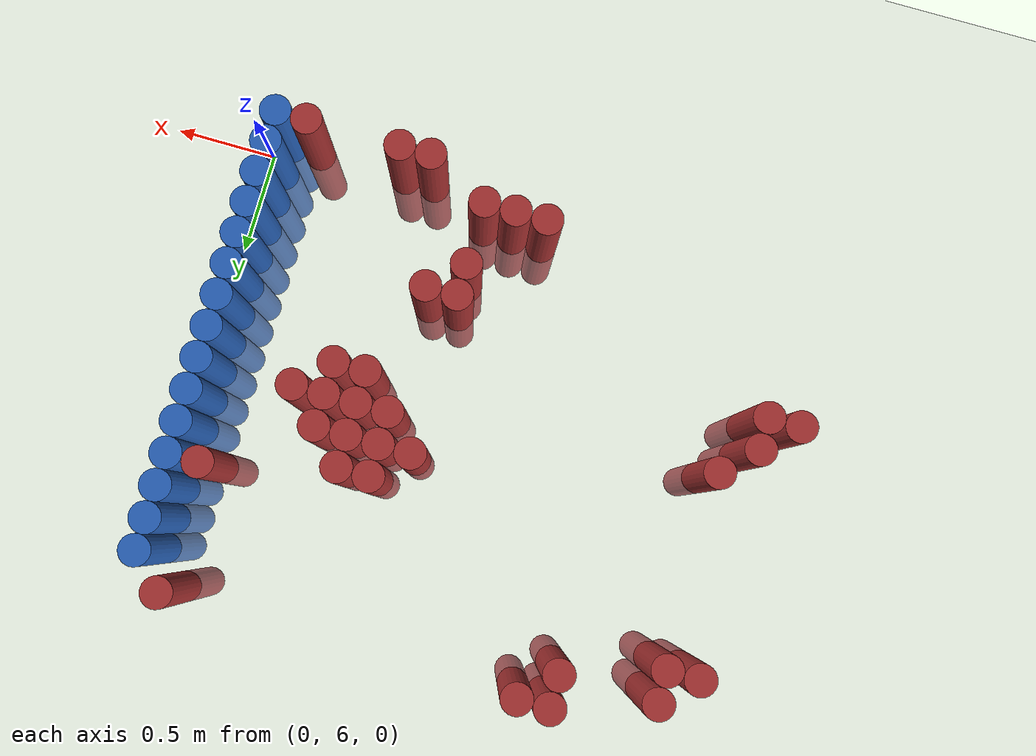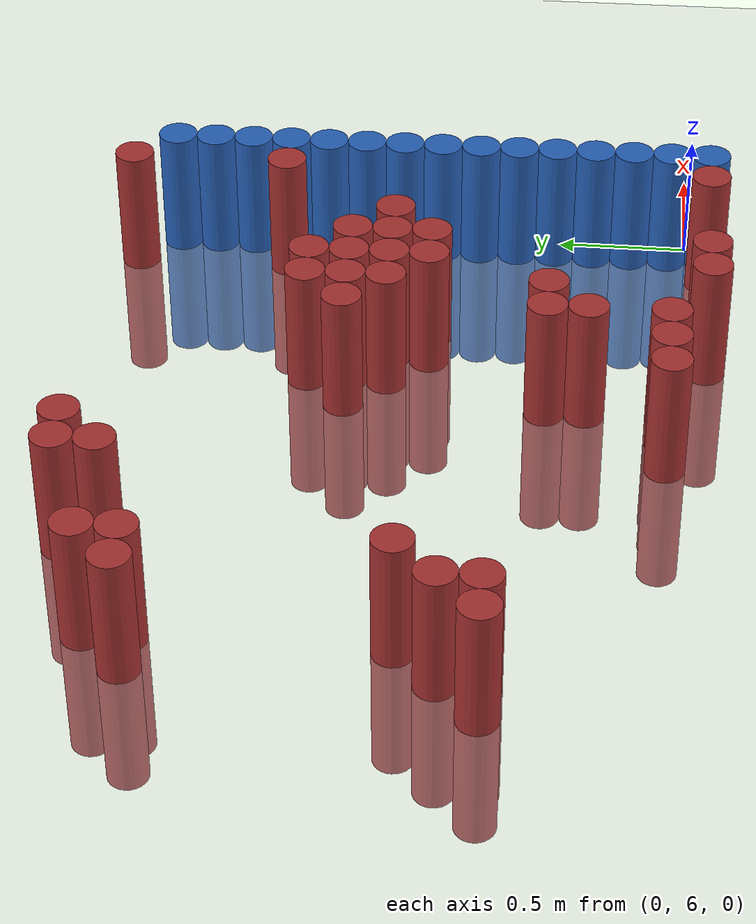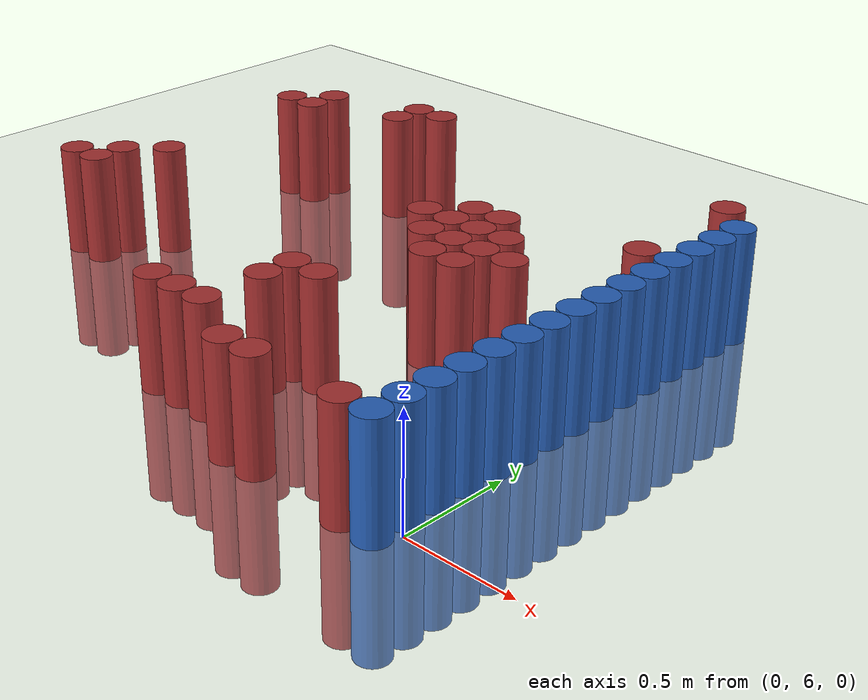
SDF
<sdf version="1.6">
 <world name="default">
  <model name="ground_plane">
   <static>1</static>
   <link name="link">
    <collision name="collision">
     <geometry><plane><normal>0 0 1</normal><size>100 100</size></plane></geometry>
     <surface><friction><ode><mu>100</mu><mu2>50</mu2></ode></friction></surface>
    </collision>
    <visual name="visual">
     <cast_shadows>0</cast_shadows>
     <geometry><plane><normal>0 0 1</normal><size>100 100</size></plane></geometry>
     <material>
      <script><uri>file://media/materials/scripts/gazebo.material</uri><name>Gazebo/Grey</name></script>
     </material>
    </visual>
   </link>
  </model>
  <model name="unit_cylinder_219">
   <static>1</static>
   <pose>-2.775000 6.675000 0.000000 0.000000 0.000000 0.000000</pose>
   <link name="link">
    <inertial>
     <mass>1</mass>
     <inertia><ixx>0.145833</ixx><ixy>0</ixy><ixz>0</ixz><iyy>0.145833</iyy><iyz>0</iyz><izz>0.125</izz></inertia>
    </inertial>
    <collision name="collision">
     <geometry><cylinder><radius>0.075000</radius><length>1</length></cylinder></geometry>
    </collision>
    <visual name="visual">
     <geometry><cylinder><radius>0.075000</radius><length>1</length></cylinder></geometry>
     <material>
      <ambient>0.648000 0.192000 0.192000 1</ambient>
      <diffuse>0.648000 0.192000 0.192000 1</diffuse>
     </material>
     <material>
      <script><name>Gazebo/Grey</name><uri>file://media/materials/scripts/gazebo.material</uri></script>
     </material>
    </visual>
   </link>
  </model>
  <model name="unit_cylinder_222">
   <static>1</static>
   <pose>-2.625000 6.675000 0.000000 0.000000 0.000000 0.000000</pose>
   <link name="link">
    <inertial>
     <mass>1</mass>
     <inertia><ixx>0.145833</ixx><ixy>0</ixy><ixz>0</ixz><iyy>0.145833</iyy><iyz>0</iyz><izz>0.125</izz></inertia>
    </inertial>
    <collision name="collision">
     <geometry><cylinder><radius>0.075000</radius><length>1</length></cylinder></geometry>
    </collision>
    <visual name="visual">
     <geometry><cylinder><radius>0.075000</radius><length>1</length></cylinder></geometry>
     <material>
      <ambient>0.648000 0.192000 0.192000 1</ambient>
      <diffuse>0.648000 0.192000 0.192000 1</diffuse>
     </material>
     <material>
      <script><name>Gazebo/Grey</name><uri>file://media/materials/scripts/gazebo.material</uri></script>
     </material>
    </visual>
   </link>
  </model>
  <model name="unit_cylinder_223">
   <static>1</static>
   <pose>-2.625000 6.825000 0.000000 0.000000 0.000000 0.000000</pose>
   <link name="link">
    <inertial>
     <mass>1</mass>
     <inertia><ixx>0.145833</ixx><ixy>0</ixy><ixz>0</ixz><iyy>0.145833</iyy><iyz>0</iyz><izz>0.125</izz></inertia>
    </inertial>
    <collision name="collision">
     <geometry><cylinder><radius>0.075000</radius><length>1</length></cylinder></geometry>
    </collision>
    <visual name="visual">
     <geometry><cylinder><radius>0.075000</radius><length>1</length></cylinder></geometry>
     <material>
      <ambient>0.648000 0.192000 0.192000 1</ambient>
      <diffuse>0.648000 0.192000 0.192000 1</diffuse>
     </material>
     <material>
      <script><name>Gazebo/Grey</name><uri>file://media/materials/scripts/gazebo.material</uri></script>
     </material>
    </visual>
   </link>
  </model>
  <model name="unit_cylinder_224">
   <static>1</static>
   <pose>-2.625000 7.875000 0.000000 0.000000 0.000000 0.000000</pose>
   <link name="link">
    <inertial>
     <mass>1</mass>
     <inertia><ixx>0.145833</ixx><ixy>0</ixy><ixz>0</ixz><iyy>0.145833</iyy><iyz>0</iyz><izz>0.125</izz></inertia>
    </inertial>
    <collision name="collision">
     <geometry><cylinder><radius>0.075000</radius><length>1</length></cylinder></geometry>
    </collision>
    <visual name="visual">
     <geometry><cylinder><radius>0.075000</radius><length>1</length></cylinder></geometry>
     <material>
      <ambient>0.648000 0.192000 0.192000 1</ambient>
      <diffuse>0.648000 0.192000 0.192000 1</diffuse>
     </material>
     <material>
      <script><name>Gazebo/Grey</name><uri>file://media/materials/scripts/gazebo.material</uri></script>
     </material>
    </visual>
   </link>
  </model>
  <model name="unit_cylinder_226">
   <static>1</static>
   <pose>-2.475000 6.975000 0.000000 0.000000 0.000000 0.000000</pose>
   <link name="link">
    <inertial>
     <mass>1</mass>
     <inertia><ixx>0.145833</ixx><ixy>0</ixy><ixz>0</ixz><iyy>0.145833</iyy><iyz>0</iyz><izz>0.125</izz></inertia>
    </inertial>
    <collision name="collision">
     <geometry><cylinder><radius>0.075000</radius><length>1</length></cylinder></geometry>
    </collision>
    <visual name="visual">
     <geometry><cylinder><radius>0.075000</radius><length>1</length></cylinder></geometry>
     <material>
      <ambient>0.648000 0.192000 0.192000 1</ambient>
      <diffuse>0.648000 0.192000 0.192000 1</diffuse>
     </material>
     <material>
      <script><name>Gazebo/Grey</name><uri>file://media/materials/scripts/gazebo.material</uri></script>
     </material>
    </visual>
   </link>
  </model>
  <model name="unit_cylinder_227">
   <static>1</static>
   <pose>-2.475000 7.875000 0.000000 0.000000 0.000000 0.000000</pose>
   <link name="link">
    <inertial>
     <mass>1</mass>
     <inertia><ixx>0.145833</ixx><ixy>0</ixy><ixz>0</ixz><iyy>0.145833</iyy><iyz>0</iyz><izz>0.125</izz></inertia>
    </inertial>
    <collision name="collision">
     <geometry><cylinder><radius>0.075000</radius><length>1</length></cylinder></geometry>
    </collision>
    <visual name="visual">
     <geometry><cylinder><radius>0.075000</radius><length>1</length></cylinder></geometry>
     <material>
      <ambient>0.648000 0.192000 0.192000 1</ambient>
      <diffuse>0.648000 0.192000 0.192000 1</diffuse>
     </material>
     <material>
      <script><name>Gazebo/Grey</name><uri>file://media/materials/scripts/gazebo.material</uri></script>
     </material>
    </visual>
   </link>
  </model>
  <model name="unit_cylinder_228">
   <static>1</static>
   <pose>-2.475000 8.025000 0.000000 0.000000 0.000000 0.000000</pose>
   <link name="link">
    <inertial>
     <mass>1</mass>
     <inertia><ixx>0.145833</ixx><ixy>0</ixy><ixz>0</ixz><iyy>0.145833</iyy><iyz>0</iyz><izz>0.125</izz></inertia>
    </inertial>
    <collision name="collision">
     <geometry><cylinder><radius>0.075000</radius><length>1</length></cylinder></geometry>
    </collision>
    <visual name="visual">
     <geometry><cylinder><radius>0.075000</radius><length>1</length></cylinder></geometry>
     <material>
      <ambient>0.648000 0.192000 0.192000 1</ambient>
      <diffuse>0.648000 0.192000 0.192000 1</diffuse>
     </material>
     <material>
      <script><name>Gazebo/Grey</name><uri>file://media/materials/scripts/gazebo.material</uri></script>
     </material>
    </visual>
   </link>
  </model>
  <model name="unit_cylinder_236">
   <static>1</static>
   <pose>-2.025000 8.025000 0.000000 0.000000 0.000000 0.000000</pose>
   <link name="link">
    <inertial>
     <mass>1</mass>
     <inertia><ixx>0.145833</ixx><ixy>0</ixy><ixz>0</ixz><iyy>0.145833</iyy><iyz>0</iyz><izz>0.125</izz></inertia>
    </inertial>
    <collision name="collision">
     <geometry><cylinder><radius>0.075000</radius><length>1</length></cylinder></geometry>
    </collision>
    <visual name="visual">
     <geometry><cylinder><radius>0.075000</radius><length>1</length></cylinder></geometry>
     <material>
      <ambient>0.648000 0.192000 0.192000 1</ambient>
      <diffuse>0.648000 0.192000 0.192000 1</diffuse>
     </material>
     <material>
      <script><name>Gazebo/Grey</name><uri>file://media/materials/scripts/gazebo.material</uri></script>
     </material>
    </visual>
   </link>
  </model>
  <model name="unit_cylinder_237">
   <static>1</static>
   <pose>-2.025000 8.175000 0.000000 0.000000 0.000000 0.000000</pose>
   <link name="link">
    <inertial>
     <mass>1</mass>
     <inertia><ixx>0.145833</ixx><ixy>0</ixy><ixz>0</ixz><iyy>0.145833</iyy><iyz>0</iyz><izz>0.125</izz></inertia>
    </inertial>
    <collision name="collision">
     <geometry><cylinder><radius>0.075000</radius><length>1</length></cylinder></geometry>
    </collision>
    <visual name="visual">
     <geometry><cylinder><radius>0.075000</radius><length>1</length></cylinder></geometry>
     <material>
      <ambient>0.648000 0.192000 0.192000 1</ambient>
      <diffuse>0.648000 0.192000 0.192000 1</diffuse>
     </material>
     <material>
      <script><name>Gazebo/Grey</name><uri>file://media/materials/scripts/gazebo.material</uri></script>
     </material>
    </visual>
   </link>
  </model>
  <model name="unit_cylinder_238">
   <static>1</static>
   <pose>-1.875000 8.175000 0.000000 0.000000 0.000000 0.000000</pose>
   <link name="link">
    <inertial>
     <mass>1</mass>
     <inertia><ixx>0.145833</ixx><ixy>0</ixy><ixz>0</ixz><iyy>0.145833</iyy><iyz>0</iyz><izz>0.125</izz></inertia>
    </inertial>
    <collision name="collision">
     <geometry><cylinder><radius>0.075000</radius><length>1</length></cylinder></geometry>
    </collision>
    <visual name="visual">
     <geometry><cylinder><radius>0.075000</radius><length>1</length></cylinder></geometry>
     <material>
      <ambient>0.648000 0.192000 0.192000 1</ambient>
      <diffuse>0.648000 0.192000 0.192000 1</diffuse>
     </material>
     <material>
      <script><name>Gazebo/Grey</name><uri>file://media/materials/scripts/gazebo.material</uri></script>
     </material>
    </visual>
   </link>
  </model>
  <model name="unit_cylinder_242">
   <static>1</static>
   <pose>-1.425000 6.075000 0.000000 0.000000 0.000000 0.000000</pose>
   <link name="link">
    <inertial>
     <mass>1</mass>
     <inertia><ixx>0.145833</ixx><ixy>0</ixy><ixz>0</ixz><iyy>0.145833</iyy><iyz>0</iyz><izz>0.125</izz></inertia>
    </inertial>
    <collision name="collision">
     <geometry><cylinder><radius>0.075000</radius><length>1</length></cylinder></geometry>
    </collision>
    <visual name="visual">
     <geometry><cylinder><radius>0.075000</radius><length>1</length></cylinder></geometry>
     <material>
      <ambient>0.648000 0.192000 0.192000 1</ambient>
      <diffuse>0.648000 0.192000 0.192000 1</diffuse>
     </material>
     <material>
      <script><name>Gazebo/Grey</name><uri>file://media/materials/scripts/gazebo.material</uri></script>
     </material>
    </visual>
   </link>
  </model>
  <model name="unit_cylinder_244">
   <static>1</static>
   <pose>-1.275000 6.075000 0.000000 0.000000 0.000000 0.000000</pose>
   <link name="link">
    <inertial>
     <mass>1</mass>
     <inertia><ixx>0.145833</ixx><ixy>0</ixy><ixz>0</ixz><iyy>0.145833</iyy><iyz>0</iyz><izz>0.125</izz></inertia>
    </inertial>
    <collision name="collision">
     <geometry><cylinder><radius>0.075000</radius><length>1</length></cylinder></geometry>
    </collision>
    <visual name="visual">
     <geometry><cylinder><radius>0.075000</radius><length>1</length></cylinder></geometry>
     <material>
      <ambient>0.648000 0.192000 0.192000 1</ambient>
      <diffuse>0.648000 0.192000 0.192000 1</diffuse>
     </material>
     <material>
      <script><name>Gazebo/Grey</name><uri>file://media/materials/scripts/gazebo.material</uri></script>
     </material>
    </visual>
   </link>
  </model>
  <model name="unit_cylinder_245">
   <static>1</static>
   <pose>-1.125000 6.075000 0.000000 0.000000 0.000000 0.000000</pose>
   <link name="link">
    <inertial>
     <mass>1</mass>
     <inertia><ixx>0.145833</ixx><ixy>0</ixy><ixz>0</ixz><iyy>0.145833</iyy><iyz>0</iyz><izz>0.125</izz></inertia>
    </inertial>
    <collision name="collision">
     <geometry><cylinder><radius>0.075000</radius><length>1</length></cylinder></geometry>
    </collision>
    <visual name="visual">
     <geometry><cylinder><radius>0.075000</radius><length>1</length></cylinder></geometry>
     <material>
      <ambient>0.648000 0.192000 0.192000 1</ambient>
      <diffuse>0.648000 0.192000 0.192000 1</diffuse>
     </material>
     <material>
      <script><name>Gazebo/Grey</name><uri>file://media/materials/scripts/gazebo.material</uri></script>
     </material>
    </visual>
   </link>
  </model>
  <model name="unit_cylinder_246">
   <static>1</static>
   <pose>-1.125000 6.375000 0.000000 0.000000 0.000000 0.000000</pose>
   <link name="link">
    <inertial>
     <mass>1</mass>
     <inertia><ixx>0.145833</ixx><ixy>0</ixy><ixz>0</ixz><iyy>0.145833</iyy><iyz>0</iyz><izz>0.125</izz></inertia>
    </inertial>
    <collision name="collision">
     <geometry><cylinder><radius>0.075000</radius><length>1</length></cylinder></geometry>
    </collision>
    <visual name="visual">
     <geometry><cylinder><radius>0.075000</radius><length>1</length></cylinder></geometry>
     <material>
      <ambient>0.648000 0.192000 0.192000 1</ambient>
      <diffuse>0.648000 0.192000 0.192000 1</diffuse>
     </material>
     <material>
      <script><name>Gazebo/Grey</name><uri>file://media/materials/scripts/gazebo.material</uri></script>
     </material>
    </visual>
   </link>
  </model>
  <model name="unit_cylinder_247">
   <static>1</static>
   <pose>-1.125000 6.525000 0.000000 0.000000 0.000000 0.000000</pose>
   <link name="link">
    <inertial>
     <mass>1</mass>
     <inertia><ixx>0.145833</ixx><ixy>0</ixy><ixz>0</ixz><iyy>0.145833</iyy><iyz>0</iyz><izz>0.125</izz></inertia>
    </inertial>
    <collision name="collision">
     <geometry><cylinder><radius>0.075000</radius><length>1</length></cylinder></geometry>
    </collision>
    <visual name="visual">
     <geometry><cylinder><radius>0.075000</radius><length>1</length></cylinder></geometry>
     <material>
      <ambient>0.648000 0.192000 0.192000 1</ambient>
      <diffuse>0.648000 0.192000 0.192000 1</diffuse>
     </material>
     <material>
      <script><name>Gazebo/Grey</name><uri>file://media/materials/scripts/gazebo.material</uri></script>
     </material>
    </visual>
   </link>
  </model>
  <model name="unit_cylinder_248">
   <static>1</static>
   <pose>-1.125000 7.275000 0.000000 0.000000 0.000000 0.000000</pose>
   <link name="link">
    <inertial>
     <mass>1</mass>
     <inertia><ixx>0.145833</ixx><ixy>0</ixy><ixz>0</ixz><iyy>0.145833</iyy><iyz>0</iyz><izz>0.125</izz></inertia>
    </inertial>
    <collision name="collision">
     <geometry><cylinder><radius>0.075000</radius><length>1</length></cylinder></geometry>
    </collision>
    <visual name="visual">
     <geometry><cylinder><radius>0.075000</radius><length>1</length></cylinder></geometry>
     <material>
      <ambient>0.648000 0.192000 0.192000 1</ambient>
      <diffuse>0.648000 0.192000 0.192000 1</diffuse>
     </material>
     <material>
      <script><name>Gazebo/Grey</name><uri>file://media/materials/scripts/gazebo.material</uri></script>
     </material>
    </visual>
   </link>
  </model>
  <model name="unit_cylinder_250">
   <static>1</static>
   <pose>-0.975000 6.525000 0.000000 0.000000 0.000000 0.000000</pose>
   <link name="link">
    <inertial>
     <mass>1</mass>
     <inertia><ixx>0.145833</ixx><ixy>0</ixy><ixz>0</ixz><iyy>0.145833</iyy><iyz>0</iyz><izz>0.125</izz></inertia>
    </inertial>
    <collision name="collision">
     <geometry><cylinder><radius>0.075000</radius><length>1</length></cylinder></geometry>
    </collision>
    <visual name="visual">
     <geometry><cylinder><radius>0.075000</radius><length>1</length></cylinder></geometry>
     <material>
      <ambient>0.648000 0.192000 0.192000 1</ambient>
      <diffuse>0.648000 0.192000 0.192000 1</diffuse>
     </material>
     <material>
      <script><name>Gazebo/Grey</name><uri>file://media/materials/scripts/gazebo.material</uri></script>
     </material>
    </visual>
   </link>
  </model>
  <model name="unit_cylinder_251">
   <static>1</static>
   <pose>-0.975000 7.125000 0.000000 0.000000 0.000000 0.000000</pose>
   <link name="link">
    <inertial>
     <mass>1</mass>
     <inertia><ixx>0.145833</ixx><ixy>0</ixy><ixz>0</ixz><iyy>0.145833</iyy><iyz>0</iyz><izz>0.125</izz></inertia>
    </inertial>
    <collision name="collision">
     <geometry><cylinder><radius>0.075000</radius><length>1</length></cylinder></geometry>
    </collision>
    <visual name="visual">
     <geometry><cylinder><radius>0.075000</radius><length>1</length></cylinder></geometry>
     <material>
      <ambient>0.648000 0.192000 0.192000 1</ambient>
      <diffuse>0.648000 0.192000 0.192000 1</diffuse>
     </material>
     <material>
      <script><name>Gazebo/Grey</name><uri>file://media/materials/scripts/gazebo.material</uri></script>
     </material>
    </visual>
   </link>
  </model>
  <model name="unit_cylinder_252">
   <static>1</static>
   <pose>-0.975000 7.275000 0.000000 0.000000 0.000000 0.000000</pose>
   <link name="link">
    <inertial>
     <mass>1</mass>
     <inertia><ixx>0.145833</ixx><ixy>0</ixy><ixz>0</ixz><iyy>0.145833</iyy><iyz>0</iyz><izz>0.125</izz></inertia>
    </inertial>
    <collision name="collision">
     <geometry><cylinder><radius>0.075000</radius><length>1</length></cylinder></geometry>
    </collision>
    <visual name="visual">
     <geometry><cylinder><radius>0.075000</radius><length>1</length></cylinder></geometry>
     <material>
      <ambient>0.648000 0.192000 0.192000 1</ambient>
      <diffuse>0.648000 0.192000 0.192000 1</diffuse>
     </material>
     <material>
      <script><name>Gazebo/Grey</name><uri>file://media/materials/scripts/gazebo.material</uri></script>
     </material>
    </visual>
   </link>
  </model>
  <model name="unit_cylinder_253">
   <static>1</static>
   <pose>-0.975000 7.425000 0.000000 0.000000 0.000000 0.000000</pose>
   <link name="link">
    <inertial>
     <mass>1</mass>
     <inertia><ixx>0.145833</ixx><ixy>0</ixy><ixz>0</ixz><iyy>0.145833</iyy><iyz>0</iyz><izz>0.125</izz></inertia>
    </inertial>
    <collision name="collision">
     <geometry><cylinder><radius>0.075000</radius><length>1</length></cylinder></geometry>
    </collision>
    <visual name="visual">
     <geometry><cylinder><radius>0.075000</radius><length>1</length></cylinder></geometry>
     <material>
      <ambient>0.648000 0.192000 0.192000 1</ambient>
      <diffuse>0.648000 0.192000 0.192000 1</diffuse>
     </material>
     <material>
      <script><name>Gazebo/Grey</name><uri>file://media/materials/scripts/gazebo.material</uri></script>
     </material>
    </visual>
   </link>
  </model>
  <model name="unit_cylinder_257">
   <static>1</static>
   <pose>-0.825000 5.925000 0.000000 0.000000 0.000000 0.000000</pose>
   <link name="link">
    <inertial>
     <mass>1</mass>
     <inertia><ixx>0.145833</ixx><ixy>0</ixy><ixz>0</ixz><iyy>0.145833</iyy><iyz>0</iyz><izz>0.125</izz></inertia>
    </inertial>
    <collision name="collision">
     <geometry><cylinder><radius>0.075000</radius><length>1</length></cylinder></geometry>
    </collision>
    <visual name="visual">
     <geometry><cylinder><radius>0.075000</radius><length>1</length></cylinder></geometry>
     <material>
      <ambient>0.648000 0.192000 0.192000 1</ambient>
      <diffuse>0.648000 0.192000 0.192000 1</diffuse>
     </material>
     <material>
      <script><name>Gazebo/Grey</name><uri>file://media/materials/scripts/gazebo.material</uri></script>
     </material>
    </visual>
   </link>
  </model>
  <model name="unit_cylinder_258">
   <static>1</static>
   <pose>-0.825000 6.975000 0.000000 0.000000 0.000000 0.000000</pose>
   <link name="link">
    <inertial>
     <mass>1</mass>
     <inertia><ixx>0.145833</ixx><ixy>0</ixy><ixz>0</ixz><iyy>0.145833</iyy><iyz>0</iyz><izz>0.125</izz></inertia>
    </inertial>
    <collision name="collision">
     <geometry><cylinder><radius>0.075000</radius><length>1</length></cylinder></geometry>
    </collision>
    <visual name="visual">
     <geometry><cylinder><radius>0.075000</radius><length>1</length></cylinder></geometry>
     <material>
      <ambient>0.648000 0.192000 0.192000 1</ambient>
      <diffuse>0.648000 0.192000 0.192000 1</diffuse>
     </material>
     <material>
      <script><name>Gazebo/Grey</name><uri>file://media/materials/scripts/gazebo.material</uri></script>
     </material>
    </visual>
   </link>
  </model>
  <model name="unit_cylinder_259">
   <static>1</static>
   <pose>-0.825000 7.125000 0.000000 0.000000 0.000000 0.000000</pose>
   <link name="link">
    <inertial>
     <mass>1</mass>
     <inertia><ixx>0.145833</ixx><ixy>0</ixy><ixz>0</ixz><iyy>0.145833</iyy><iyz>0</iyz><izz>0.125</izz></inertia>
    </inertial>
    <collision name="collision">
     <geometry><cylinder><radius>0.075000</radius><length>1</length></cylinder></geometry>
    </collision>
    <visual name="visual">
     <geometry><cylinder><radius>0.075000</radius><length>1</length></cylinder></geometry>
     <material>
      <ambient>0.648000 0.192000 0.192000 1</ambient>
      <diffuse>0.648000 0.192000 0.192000 1</diffuse>
     </material>
     <material>
      <script><name>Gazebo/Grey</name><uri>file://media/materials/scripts/gazebo.material</uri></script>
     </material>
    </visual>
   </link>
  </model>
  <model name="unit_cylinder_260">
   <static>1</static>
   <pose>-0.825000 7.275000 0.000000 0.000000 0.000000 0.000000</pose>
   <link name="link">
    <inertial>
     <mass>1</mass>
     <inertia><ixx>0.145833</ixx><ixy>0</ixy><ixz>0</ixz><iyy>0.145833</iyy><iyz>0</iyz><izz>0.125</izz></inertia>
    </inertial>
    <collision name="collision">
     <geometry><cylinder><radius>0.075000</radius><length>1</length></cylinder></geometry>
    </collision>
    <visual name="visual">
     <geometry><cylinder><radius>0.075000</radius><length>1</length></cylinder></geometry>
     <material>
      <ambient>0.648000 0.192000 0.192000 1</ambient>
      <diffuse>0.648000 0.192000 0.192000 1</diffuse>
     </material>
     <material>
      <script><name>Gazebo/Grey</name><uri>file://media/materials/scripts/gazebo.material</uri></script>
     </material>
    </visual>
   </link>
  </model>
  <model name="unit_cylinder_261">
   <static>1</static>
   <pose>-0.825000 7.425000 0.000000 0.000000 0.000000 0.000000</pose>
   <link name="link">
    <inertial>
     <mass>1</mass>
     <inertia><ixx>0.145833</ixx><ixy>0</ixy><ixz>0</ixz><iyy>0.145833</iyy><iyz>0</iyz><izz>0.125</izz></inertia>
    </inertial>
    <collision name="collision">
     <geometry><cylinder><radius>0.075000</radius><length>1</length></cylinder></geometry>
    </collision>
    <visual name="visual">
     <geometry><cylinder><radius>0.075000</radius><length>1</length></cylinder></geometry>
     <material>
      <ambient>0.648000 0.192000 0.192000 1</ambient>
      <diffuse>0.648000 0.192000 0.192000 1</diffuse>
     </material>
     <material>
      <script><name>Gazebo/Grey</name><uri>file://media/materials/scripts/gazebo.material</uri></script>
     </material>
    </visual>
   </link>
  </model>
  <model name="unit_cylinder_267">
   <static>1</static>
   <pose>-0.675000 5.925000 0.000000 0.000000 0.000000 0.000000</pose>
   <link name="link">
    <inertial>
     <mass>1</mass>
     <inertia><ixx>0.145833</ixx><ixy>0</ixy><ixz>0</ixz><iyy>0.145833</iyy><iyz>0</iyz><izz>0.125</izz></inertia>
    </inertial>
    <collision name="collision">
     <geometry><cylinder><radius>0.075000</radius><length>1</length></cylinder></geometry>
    </collision>
    <visual name="visual">
     <geometry><cylinder><radius>0.075000</radius><length>1</length></cylinder></geometry>
     <material>
      <ambient>0.648000 0.192000 0.192000 1</ambient>
      <diffuse>0.648000 0.192000 0.192000 1</diffuse>
     </material>
     <material>
      <script><name>Gazebo/Grey</name><uri>file://media/materials/scripts/gazebo.material</uri></script>
     </material>
    </visual>
   </link>
  </model>
  <model name="unit_cylinder_268">
   <static>1</static>
   <pose>-0.675000 6.975000 0.000000 0.000000 0.000000 0.000000</pose>
   <link name="link">
    <inertial>
     <mass>1</mass>
     <inertia><ixx>0.145833</ixx><ixy>0</ixy><ixz>0</ixz><iyy>0.145833</iyy><iyz>0</iyz><izz>0.125</izz></inertia>
    </inertial>
    <collision name="collision">
     <geometry><cylinder><radius>0.075000</radius><length>1</length></cylinder></geometry>
    </collision>
    <visual name="visual">
     <geometry><cylinder><radius>0.075000</radius><length>1</length></cylinder></geometry>
     <material>
      <ambient>0.648000 0.192000 0.192000 1</ambient>
      <diffuse>0.648000 0.192000 0.192000 1</diffuse>
     </material>
     <material>
      <script><name>Gazebo/Grey</name><uri>file://media/materials/scripts/gazebo.material</uri></script>
     </material>
    </visual>
   </link>
  </model>
  <model name="unit_cylinder_269">
   <static>1</static>
   <pose>-0.675000 7.125000 0.000000 0.000000 0.000000 0.000000</pose>
   <link name="link">
    <inertial>
     <mass>1</mass>
     <inertia><ixx>0.145833</ixx><ixy>0</ixy><ixz>0</ixz><iyy>0.145833</iyy><iyz>0</iyz><izz>0.125</izz></inertia>
    </inertial>
    <collision name="collision">
     <geometry><cylinder><radius>0.075000</radius><length>1</length></cylinder></geometry>
    </collision>
    <visual name="visual">
     <geometry><cylinder><radius>0.075000</radius><length>1</length></cylinder></geometry>
     <material>
      <ambient>0.648000 0.192000 0.192000 1</ambient>
      <diffuse>0.648000 0.192000 0.192000 1</diffuse>
     </material>
     <material>
      <script><name>Gazebo/Grey</name><uri>file://media/materials/scripts/gazebo.material</uri></script>
     </material>
    </visual>
   </link>
  </model>
  <model name="unit_cylinder_270">
   <static>1</static>
   <pose>-0.675000 7.275000 0.000000 0.000000 0.000000 0.000000</pose>
   <link name="link">
    <inertial>
     <mass>1</mass>
     <inertia><ixx>0.145833</ixx><ixy>0</ixy><ixz>0</ixz><iyy>0.145833</iyy><iyz>0</iyz><izz>0.125</izz></inertia>
    </inertial>
    <collision name="collision">
     <geometry><cylinder><radius>0.075000</radius><length>1</length></cylinder></geometry>
    </collision>
    <visual name="visual">
     <geometry><cylinder><radius>0.075000</radius><length>1</length></cylinder></geometry>
     <material>
      <ambient>0.648000 0.192000 0.192000 1</ambient>
      <diffuse>0.648000 0.192000 0.192000 1</diffuse>
     </material>
     <material>
      <script><name>Gazebo/Grey</name><uri>file://media/materials/scripts/gazebo.material</uri></script>
     </material>
    </visual>
   </link>
  </model>
  <model name="unit_cylinder_277">
   <static>1</static>
   <pose>-0.525000 7.125000 0.000000 0.000000 0.000000 0.000000</pose>
   <link name="link">
    <inertial>
     <mass>1</mass>
     <inertia><ixx>0.145833</ixx><ixy>0</ixy><ixz>0</ixz><iyy>0.145833</iyy><iyz>0</iyz><izz>0.125</izz></inertia>
    </inertial>
    <collision name="collision">
     <geometry><cylinder><radius>0.075000</radius><length>1</length></cylinder></geometry>
    </collision>
    <visual name="visual">
     <geometry><cylinder><radius>0.075000</radius><length>1</length></cylinder></geometry>
     <material>
      <ambient>0.648000 0.192000 0.192000 1</ambient>
      <diffuse>0.648000 0.192000 0.192000 1</diffuse>
     </material>
     <material>
      <script><name>Gazebo/Grey</name><uri>file://media/materials/scripts/gazebo.material</uri></script>
     </material>
    </visual>
   </link>
  </model>
  <model name="unit_cylinder_294">
   <static>1</static>
   <pose>-0.225000 5.925000 0.000000 0.000000 0.000000 0.000000</pose>
   <link name="link">
    <inertial>
     <mass>1</mass>
     <inertia><ixx>0.145833</ixx><ixy>0</ixy><ixz>0</ixz><iyy>0.145833</iyy><iyz>0</iyz><izz>0.125</izz></inertia>
    </inertial>
    <collision name="collision">
     <geometry><cylinder><radius>0.075000</radius><length>1</length></cylinder></geometry>
    </collision>
    <visual name="visual">
     <geometry><cylinder><radius>0.075000</radius><length>1</length></cylinder></geometry>
     <material>
      <ambient>0.648000 0.192000 0.192000 1</ambient>
      <diffuse>0.648000 0.192000 0.192000 1</diffuse>
     </material>
     <material>
      <script><name>Gazebo/Grey</name><uri>file://media/materials/scripts/gazebo.material</uri></script>
     </material>
    </visual>
   </link>
  </model>
  <model name="unit_cylinder_295">
   <static>1</static>
   <pose>-0.225000 7.575000 0.000000 0.000000 0.000000 0.000000</pose>
   <link name="link">
    <inertial>
     <mass>1</mass>
     <inertia><ixx>0.145833</ixx><ixy>0</ixy><ixz>0</ixz><iyy>0.145833</iyy><iyz>0</iyz><izz>0.125</izz></inertia>
    </inertial>
    <collision name="collision">
     <geometry><cylinder><radius>0.075000</radius><length>1</length></cylinder></geometry>
    </collision>
    <visual name="visual">
     <geometry><cylinder><radius>0.075000</radius><length>1</length></cylinder></geometry>
     <material>
      <ambient>0.648000 0.192000 0.192000 1</ambient>
      <diffuse>0.648000 0.192000 0.192000 1</diffuse>
     </material>
     <material>
      <script><name>Gazebo/Grey</name><uri>file://media/materials/scripts/gazebo.material</uri></script>
     </material>
    </visual>
   </link>
  </model>
  <model name="unit_cylinder_296">
   <static>1</static>
   <pose>-0.225000 8.175000 0.000000 0.000000 0.000000 0.000000</pose>
   <link name="link">
    <inertial>
     <mass>1</mass>
     <inertia><ixx>0.145833</ixx><ixy>0</ixy><ixz>0</ixz><iyy>0.145833</iyy><iyz>0</iyz><izz>0.125</izz></inertia>
    </inertial>
    <collision name="collision">
     <geometry><cylinder><radius>0.075000</radius><length>1</length></cylinder></geometry>
    </collision>
    <visual name="visual">
     <geometry><cylinder><radius>0.075000</radius><length>1</length></cylinder></geometry>
     <material>
      <ambient>0.648000 0.192000 0.192000 1</ambient>
      <diffuse>0.648000 0.192000 0.192000 1</diffuse>
     </material>
     <material>
      <script><name>Gazebo/Grey</name><uri>file://media/materials/scripts/gazebo.material</uri></script>
     </material>
    </visual>
   </link>
  </model>
  <model name="unit_cylinder_308">
   <static>1</static>
   <pose>-0.075000 5.925000 0.000000 0.000000 0.000000 0.000000</pose>
   <link name="link">
    <inertial>
     <mass>1</mass>
     <inertia><ixx>0.145833</ixx><ixy>0</ixy><ixz>0</ixz><iyy>0.145833</iyy><iyz>0</iyz><izz>0.125</izz></inertia>
    </inertial>
    <collision name="collision">
     <geometry><cylinder><radius>0.075000</radius><length>1</length></cylinder></geometry>
    </collision>
    <visual name="visual">
     <geometry><cylinder><radius>0.075000</radius><length>1</length></cylinder></geometry>
     <material>
      <ambient>0.152000 0.379000 0.720000 1</ambient>
      <diffuse>0.152000 0.379000 0.720000 1</diffuse>
     </material>
     <material>
      <script><name>Gazebo/Grey</name><uri>file://media/materials/scripts/gazebo.material</uri></script>
     </material>
    </visual>
   </link>
  </model>
  <model name="unit_cylinder_309">
   <static>1</static>
   <pose>-0.075000 6.075000 0.000000 0.000000 0.000000 0.000000</pose>
   <link name="link">
    <inertial>
     <mass>1</mass>
     <inertia><ixx>0.145833</ixx><ixy>0</ixy><ixz>0</ixz><iyy>0.145833</iyy><iyz>0</iyz><izz>0.125</izz></inertia>
    </inertial>
    <collision name="collision">
     <geometry><cylinder><radius>0.075000</radius><length>1</length></cylinder></geometry>
    </collision>
    <visual name="visual">
     <geometry><cylinder><radius>0.075000</radius><length>1</length></cylinder></geometry>
     <material>
      <ambient>0.152000 0.379000 0.720000 1</ambient>
      <diffuse>0.152000 0.379000 0.720000 1</diffuse>
     </material>
     <material>
      <script><name>Gazebo/Grey</name><uri>file://media/materials/scripts/gazebo.material</uri></script>
     </material>
    </visual>
   </link>
  </model>
  <model name="unit_cylinder_310">
   <static>1</static>
   <pose>-0.075000 6.225000 0.000000 0.000000 0.000000 0.000000</pose>
   <link name="link">
    <inertial>
     <mass>1</mass>
     <inertia><ixx>0.145833</ixx><ixy>0</ixy><ixz>0</ixz><iyy>0.145833</iyy><iyz>0</iyz><izz>0.125</izz></inertia>
    </inertial>
    <collision name="collision">
     <geometry><cylinder><radius>0.075000</radius><length>1</length></cylinder></geometry>
    </collision>
    <visual name="visual">
     <geometry><cylinder><radius>0.075000</radius><length>1</length></cylinder></geometry>
     <material>
      <ambient>0.152000 0.379000 0.720000 1</ambient>
      <diffuse>0.152000 0.379000 0.720000 1</diffuse>
     </material>
     <material>
      <script><name>Gazebo/Grey</name><uri>file://media/materials/scripts/gazebo.material</uri></script>
     </material>
    </visual>
   </link>
  </model>
  <model name="unit_cylinder_311">
   <static>1</static>
   <pose>-0.075000 6.375000 0.000000 0.000000 0.000000 0.000000</pose>
   <link name="link">
    <inertial>
     <mass>1</mass>
     <inertia><ixx>0.145833</ixx><ixy>0</ixy><ixz>0</ixz><iyy>0.145833</iyy><iyz>0</iyz><izz>0.125</izz></inertia>
    </inertial>
    <collision name="collision">
     <geometry><cylinder><radius>0.075000</radius><length>1</length></cylinder></geometry>
    </collision>
    <visual name="visual">
     <geometry><cylinder><radius>0.075000</radius><length>1</length></cylinder></geometry>
     <material>
      <ambient>0.152000 0.379000 0.720000 1</ambient>
      <diffuse>0.152000 0.379000 0.720000 1</diffuse>
     </material>
     <material>
      <script><name>Gazebo/Grey</name><uri>file://media/materials/scripts/gazebo.material</uri></script>
     </material>
    </visual>
   </link>
  </model>
  <model name="unit_cylinder_312">
   <static>1</static>
   <pose>-0.075000 6.525000 0.000000 0.000000 0.000000 0.000000</pose>
   <link name="link">
    <inertial>
     <mass>1</mass>
     <inertia><ixx>0.145833</ixx><ixy>0</ixy><ixz>0</ixz><iyy>0.145833</iyy><iyz>0</iyz><izz>0.125</izz></inertia>
    </inertial>
    <collision name="collision">
     <geometry><cylinder><radius>0.075000</radius><length>1</length></cylinder></geometry>
    </collision>
    <visual name="visual">
     <geometry><cylinder><radius>0.075000</radius><length>1</length></cylinder></geometry>
     <material>
      <ambient>0.152000 0.379000 0.720000 1</ambient>
      <diffuse>0.152000 0.379000 0.720000 1</diffuse>
     </material>
     <material>
      <script><name>Gazebo/Grey</name><uri>file://media/materials/scripts/gazebo.material</uri></script>
     </material>
    </visual>
   </link>
  </model>
  <model name="unit_cylinder_313">
   <static>1</static>
   <pose>-0.075000 6.675000 0.000000 0.000000 0.000000 0.000000</pose>
   <link name="link">
    <inertial>
     <mass>1</mass>
     <inertia><ixx>0.145833</ixx><ixy>0</ixy><ixz>0</ixz><iyy>0.145833</iyy><iyz>0</iyz><izz>0.125</izz></inertia>
    </inertial>
    <collision name="collision">
     <geometry><cylinder><radius>0.075000</radius><length>1</length></cylinder></geometry>
    </collision>
    <visual name="visual">
     <geometry><cylinder><radius>0.075000</radius><length>1</length></cylinder></geometry>
     <material>
      <ambient>0.152000 0.379000 0.720000 1</ambient>
      <diffuse>0.152000 0.379000 0.720000 1</diffuse>
     </material>
     <material>
      <script><name>Gazebo/Grey</name><uri>file://media/materials/scripts/gazebo.material</uri></script>
     </material>
    </visual>
   </link>
  </model>
  <model name="unit_cylinder_314">
   <static>1</static>
   <pose>-0.075000 6.825000 0.000000 0.000000 0.000000 0.000000</pose>
   <link name="link">
    <inertial>
     <mass>1</mass>
     <inertia><ixx>0.145833</ixx><ixy>0</ixy><ixz>0</ixz><iyy>0.145833</iyy><iyz>0</iyz><izz>0.125</izz></inertia>
    </inertial>
    <collision name="collision">
     <geometry><cylinder><radius>0.075000</radius><length>1</length></cylinder></geometry>
    </collision>
    <visual name="visual">
     <geometry><cylinder><radius>0.075000</radius><length>1</length></cylinder></geometry>
     <material>
      <ambient>0.152000 0.379000 0.720000 1</ambient>
      <diffuse>0.152000 0.379000 0.720000 1</diffuse>
     </material>
     <material>
      <script><name>Gazebo/Grey</name><uri>file://media/materials/scripts/gazebo.material</uri></script>
     </material>
    </visual>
   </link>
  </model>
  <model name="unit_cylinder_315">
   <static>1</static>
   <pose>-0.075000 6.975000 0.000000 0.000000 0.000000 0.000000</pose>
   <link name="link">
    <inertial>
     <mass>1</mass>
     <inertia><ixx>0.145833</ixx><ixy>0</ixy><ixz>0</ixz><iyy>0.145833</iyy><iyz>0</iyz><izz>0.125</izz></inertia>
    </inertial>
    <collision name="collision">
     <geometry><cylinder><radius>0.075000</radius><length>1</length></cylinder></geometry>
    </collision>
    <visual name="visual">
     <geometry><cylinder><radius>0.075000</radius><length>1</length></cylinder></geometry>
     <material>
      <ambient>0.152000 0.379000 0.720000 1</ambient>
      <diffuse>0.152000 0.379000 0.720000 1</diffuse>
     </material>
     <material>
      <script><name>Gazebo/Grey</name><uri>file://media/materials/scripts/gazebo.material</uri></script>
     </material>
    </visual>
   </link>
  </model>
  <model name="unit_cylinder_316">
   <static>1</static>
   <pose>-0.075000 7.125000 0.000000 0.000000 0.000000 0.000000</pose>
   <link name="link">
    <inertial>
     <mass>1</mass>
     <inertia><ixx>0.145833</ixx><ixy>0</ixy><ixz>0</ixz><iyy>0.145833</iyy><iyz>0</iyz><izz>0.125</izz></inertia>
    </inertial>
    <collision name="collision">
     <geometry><cylinder><radius>0.075000</radius><length>1</length></cylinder></geometry>
    </collision>
    <visual name="visual">
     <geometry><cylinder><radius>0.075000</radius><length>1</length></cylinder></geometry>
     <material>
      <ambient>0.152000 0.379000 0.720000 1</ambient>
      <diffuse>0.152000 0.379000 0.720000 1</diffuse>
     </material>
     <material>
      <script><name>Gazebo/Grey</name><uri>file://media/materials/scripts/gazebo.material</uri></script>
     </material>
    </visual>
   </link>
  </model>
  <model name="unit_cylinder_317">
   <static>1</static>
   <pose>-0.075000 7.275000 0.000000 0.000000 0.000000 0.000000</pose>
   <link name="link">
    <inertial>
     <mass>1</mass>
     <inertia><ixx>0.145833</ixx><ixy>0</ixy><ixz>0</ixz><iyy>0.145833</iyy><iyz>0</iyz><izz>0.125</izz></inertia>
    </inertial>
    <collision name="collision">
     <geometry><cylinder><radius>0.075000</radius><length>1</length></cylinder></geometry>
    </collision>
    <visual name="visual">
     <geometry><cylinder><radius>0.075000</radius><length>1</length></cylinder></geometry>
     <material>
      <ambient>0.152000 0.379000 0.720000 1</ambient>
      <diffuse>0.152000 0.379000 0.720000 1</diffuse>
     </material>
     <material>
      <script><name>Gazebo/Grey</name><uri>file://media/materials/scripts/gazebo.material</uri></script>
     </material>
    </visual>
   </link>
  </model>
  <model name="unit_cylinder_318">
   <static>1</static>
   <pose>-0.075000 7.425000 0.000000 0.000000 0.000000 0.000000</pose>
   <link name="link">
    <inertial>
     <mass>1</mass>
     <inertia><ixx>0.145833</ixx><ixy>0</ixy><ixz>0</ixz><iyy>0.145833</iyy><iyz>0</iyz><izz>0.125</izz></inertia>
    </inertial>
    <collision name="collision">
     <geometry><cylinder><radius>0.075000</radius><length>1</length></cylinder></geometry>
    </collision>
    <visual name="visual">
     <geometry><cylinder><radius>0.075000</radius><length>1</length></cylinder></geometry>
     <material>
      <ambient>0.152000 0.379000 0.720000 1</ambient>
      <diffuse>0.152000 0.379000 0.720000 1</diffuse>
     </material>
     <material>
      <script><name>Gazebo/Grey</name><uri>file://media/materials/scripts/gazebo.material</uri></script>
     </material>
    </visual>
   </link>
  </model>
  <model name="unit_cylinder_319">
   <static>1</static>
   <pose>-0.075000 7.575000 0.000000 0.000000 0.000000 0.000000</pose>
   <link name="link">
    <inertial>
     <mass>1</mass>
     <inertia><ixx>0.145833</ixx><ixy>0</ixy><ixz>0</ixz><iyy>0.145833</iyy><iyz>0</iyz><izz>0.125</izz></inertia>
    </inertial>
    <collision name="collision">
     <geometry><cylinder><radius>0.075000</radius><length>1</length></cylinder></geometry>
    </collision>
    <visual name="visual">
     <geometry><cylinder><radius>0.075000</radius><length>1</length></cylinder></geometry>
     <material>
      <ambient>0.152000 0.379000 0.720000 1</ambient>
      <diffuse>0.152000 0.379000 0.720000 1</diffuse>
     </material>
     <material>
      <script><name>Gazebo/Grey</name><uri>file://media/materials/scripts/gazebo.material</uri></script>
     </material>
    </visual>
   </link>
  </model>
  <model name="unit_cylinder_320">
   <static>1</static>
   <pose>-0.075000 7.725000 0.000000 0.000000 0.000000 0.000000</pose>
   <link name="link">
    <inertial>
     <mass>1</mass>
     <inertia><ixx>0.145833</ixx><ixy>0</ixy><ixz>0</ixz><iyy>0.145833</iyy><iyz>0</iyz><izz>0.125</izz></inertia>
    </inertial>
    <collision name="collision">
     <geometry><cylinder><radius>0.075000</radius><length>1</length></cylinder></geometry>
    </collision>
    <visual name="visual">
     <geometry><cylinder><radius>0.075000</radius><length>1</length></cylinder></geometry>
     <material>
      <ambient>0.152000 0.379000 0.720000 1</ambient>
      <diffuse>0.152000 0.379000 0.720000 1</diffuse>
     </material>
     <material>
      <script><name>Gazebo/Grey</name><uri>file://media/materials/scripts/gazebo.material</uri></script>
     </material>
    </visual>
   </link>
  </model>
  <model name="unit_cylinder_321">
   <static>1</static>
   <pose>-0.075000 7.875000 0.000000 0.000000 0.000000 0.000000</pose>
   <link name="link">
    <inertial>
     <mass>1</mass>
     <inertia><ixx>0.145833</ixx><ixy>0</ixy><ixz>0</ixz><iyy>0.145833</iyy><iyz>0</iyz><izz>0.125</izz></inertia>
    </inertial>
    <collision name="collision">
     <geometry><cylinder><radius>0.075000</radius><length>1</length></cylinder></geometry>
    </collision>
    <visual name="visual">
     <geometry><cylinder><radius>0.075000</radius><length>1</length></cylinder></geometry>
     <material>
      <ambient>0.152000 0.379000 0.720000 1</ambient>
      <diffuse>0.152000 0.379000 0.720000 1</diffuse>
     </material>
     <material>
      <script><name>Gazebo/Grey</name><uri>file://media/materials/scripts/gazebo.material</uri></script>
     </material>
    </visual>
   </link>
  </model>
  <model name="unit_cylinder_322">
   <static>1</static>
   <pose>-0.075000 8.025000 0.000000 0.000000 0.000000 0.000000</pose>
   <link name="link">
    <inertial>
     <mass>1</mass>
     <inertia><ixx>0.145833</ixx><ixy>0</ixy><ixz>0</ixz><iyy>0.145833</iyy><iyz>0</iyz><izz>0.125</izz></inertia>
    </inertial>
    <collision name="collision">
     <geometry><cylinder><radius>0.075000</radius><length>1</length></cylinder></geometry>
    </collision>
    <visual name="visual">
     <geometry><cylinder><radius>0.075000</radius><length>1</length></cylinder></geometry>
     <material>
      <ambient>0.152000 0.379000 0.720000 1</ambient>
      <diffuse>0.152000 0.379000 0.720000 1</diffuse>
     </material>
     <material>
      <script><name>Gazebo/Grey</name><uri>file://media/materials/scripts/gazebo.material</uri></script>
     </material>
    </visual>
   </link>
  </model>
 </world>
</sdf>
